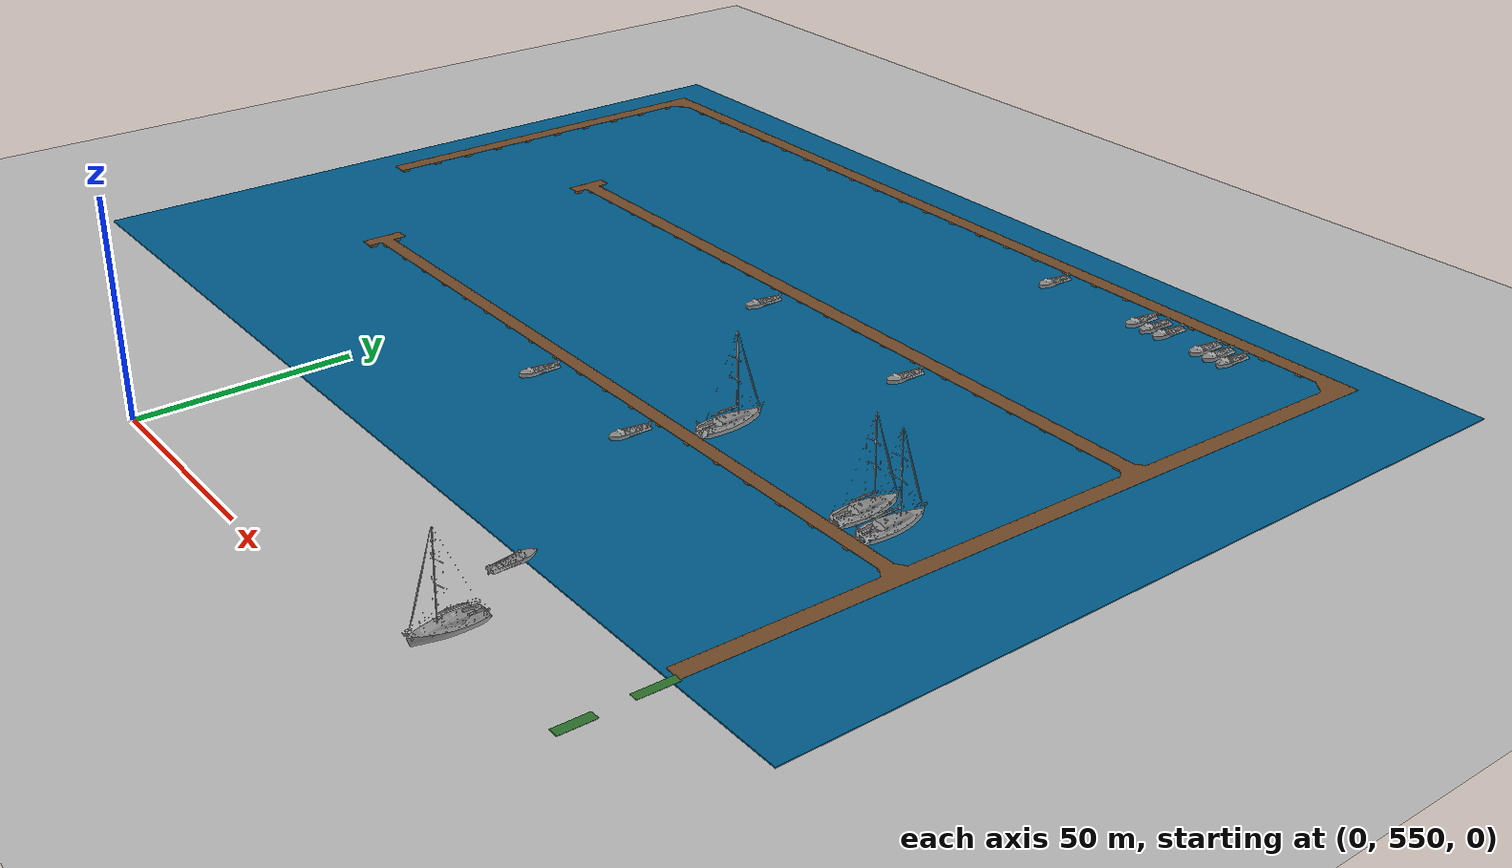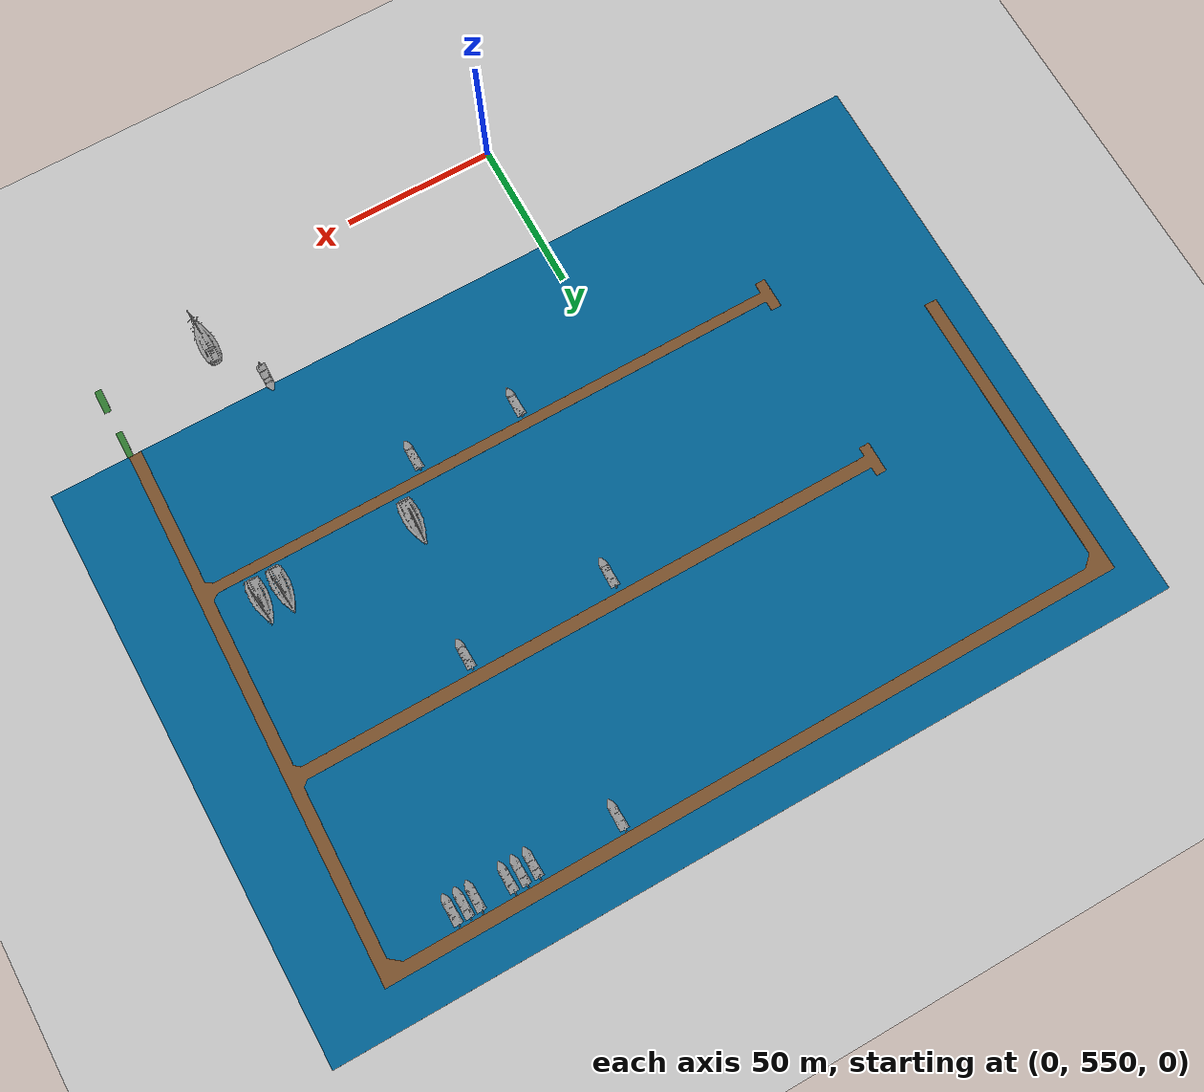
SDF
<sdf version="1.7">
 <world name="default">
  <model name="ground_plane">
   <static>1</static>
   <link name="link">
    <collision name="collision">
     <geometry><plane><normal>0 0 1</normal><size>100 100</size></plane></geometry>
     <surface><friction><ode><mu>100</mu><mu2>50</mu2></ode></friction></surface>
    </collision>
    <visual name="visual">
     <cast_shadows>0</cast_shadows>
     <geometry><plane><normal>0 0 1</normal><size>100 100</size></plane></geometry>
     <material>
      <script><uri>file://media/materials/scripts/gazebo.material</uri><name>Gazebo/Grey</name></script>
     </material>
    </visual>
   </link>
  </model>
  <model name="Marina_Zona_C">
   <link name="link">
    <inertial>
     <mass>50000</mass>
     <inertia><ixx>0</ixx><ixy>0</ixy><ixz>0</ixz><iyy>0</iyy><iyz>0</iyz><izz>0</izz></inertia>
    </inertial>
    <visual name="visual">
     <geometry>
      <mesh>
       <uri>/home/albert/marinero_ws/src/marinero_simulations/models/Marina_Zona_C/meshes/Marina_Zona_C.stl</uri>
       <scale>1 1 1</scale>
      </mesh>
     </geometry>
     <material>
      <script><uri>file://media/materials/scripts/gazebo.material</uri><name>Gazebo/Brown</name></script>
      <ambient>0.278 0.129 0.02 1</ambient>
      <diffuse>0.278 0.129 0.02 1</diffuse>
      <specular>0.278 0.129 0.02 1</specular>
      <emissive>0 0 0 1</emissive>
      <shader type="pixel"><normal_map>__default__</normal_map></shader>
     </material>
    </visual>
    <collision name="collision">
     <geometry>
      <mesh>
       <uri>/home/albert/marinero_ws/src/marinero_simulations/models/Marina_Zona_C/meshes/Marina_Zona_C.stl</uri>
       <scale>1 1 1</scale>
      </mesh>
     </geometry>
     <surface>
      <friction>
       <ode><mu>0.9</mu><mu2>0.9</mu2><fdir1>0 0 0</fdir1><slip1>0.001</slip1><slip2>1e-05</slip2></ode>
       <torsional>
        <coefficient>1</coefficient>
        <patch_radius>0</patch_radius>
        <surface_radius>0</surface_radius>
        <use_patch_radius>1</use_patch_radius>
        <ode><slip>0</slip></ode>
       </torsional>
      </friction>
      <bounce><restitution_coefficient>0</restitution_coefficient><threshold>1000</threshold></bounce>
      <contact>
       <collide_without_contact>0</collide_without_contact>
       <collide_without_contact_bitmask>0</collide_without_contact_bitmask>
       <collide_bitmask>1</collide_bitmask>
       <ode>
        <soft_cfm>0</soft_cfm>
        <soft_erp>0.2</soft_erp>
        <kp>1e+11</kp>
        <kd>100</kd>
        <max_vel>10</max_vel>
        <min_depth>0.001</min_depth>
       </ode>
       <bullet>
        <split_impulse>1</split_impulse>
        <split_impulse_penetration_threshold>-0.01</split_impulse_penetration_threshold>
        <soft_cfm>0</soft_cfm>
        <soft_erp>0.2</soft_erp>
        <kp>1e+11</kp>
        <kd>100</kd>
       </bullet>
      </contact>
     </surface>
    </collision>
   </link>
   <static>1</static>
   <pose>140.34 587.6 0.08 0 -0 0</pose>
  </model>
  <model name="sailboat_1_1_clone_1">
   <static>1</static>
   <link name="link">
    <visual name="visual">
     <pose>0 0 1 0 0 -1.507</pose>
     <geometry>
      <mesh>
       <uri>/home/albert/marinero_ws/src/marinero_simulations/models/sailboat_1/meshes/Sailboat.stl</uri>
       <scale>1.8 1.8 1.8</scale>
      </mesh>
     </geometry>
     <material>
      <script><uri>file://media/materials/scripts/gazebo.material</uri><name>Gazebo/Grey</name></script>
     </material>
    </visual>
    <collision name="collision">
     <pose>0 0 1 0 0 -1.507</pose>
     <geometry>
      <mesh>
       <uri>/home/albert/marinero_ws/src/marinero_simulations/models/sailboat_1/meshes/Sailboat.stl</uri>
       <scale>1.8 1.8 1.8</scale>
      </mesh>
     </geometry>
    </collision>
   </link>
   <pose>77.9434 647.569 0 0 0 -0.077596</pose>
  </model>
  <model name="speedboat_clone_2">
   <static>1</static>
   <link name="link">
    <visual name="visual">
     <pose>0 0 0.2 0 -0 1.57</pose>
     <geometry>
      <mesh>
       <uri>/home/albert/marinero_ws/src/marinero_simulations/models/speedboat/meshes/Speedboat.stl</uri>
       <scale>2 2 2</scale>
      </mesh>
     </geometry>
     <material>
      <script><uri>file://media/materials/scripts/gazebo.material</uri><name>Gazebo/Grey</name></script>
     </material>
    </visual>
    <collision name="collision">
     <pose>0 0 0.2 0 -0 1.57</pose>
     <geometry>
      <mesh>
       <uri>/home/albert/marinero_ws/src/marinero_simulations/models/sailboat_1/meshes/Speedboat.stl</uri>
       <scale>2 2 2</scale>
      </mesh>
     </geometry>
    </collision>
   </link>
   <pose>96.2597 585.04 0 0 -0 0</pose>
  </model>
  <model name="speedboat_clone_3">
   <static>1</static>
   <link name="link">
    <visual name="visual">
     <pose>0 0 0.2 0 -0 1.57</pose>
     <geometry>
      <mesh>
       <uri>/home/albert/marinero_ws/src/marinero_simulations/models/speedboat/meshes/Speedboat.stl</uri>
       <scale>2 2 2</scale>
      </mesh>
     </geometry>
     <material>
      <script><uri>file://media/materials/scripts/gazebo.material</uri><name>Gazebo/Grey</name></script>
     </material>
    </visual>
    <collision name="collision">
     <pose>0 0 0.2 0 -0 1.57</pose>
     <geometry>
      <mesh>
       <uri>/home/albert/marinero_ws/src/marinero_simulations/models/sailboat_1/meshes/Speedboat.stl</uri>
       <scale>2 2 2</scale>
      </mesh>
     </geometry>
    </collision>
   </link>
   <pose>68.6056 628.792 0 0 0 -3.12882</pose>
  </model>
  <model name="speedboat_clone_3_clone">
   <static>1</static>
   <link name="link">
    <visual name="visual">
     <pose>0 0 0.2 0 -0 1.57</pose>
     <geometry>
      <mesh>
       <uri>/home/albert/marinero_ws/src/marinero_simulations/models/speedboat/meshes/Speedboat.stl</uri>
       <scale>2 2 2</scale>
      </mesh>
     </geometry>
     <material>
      <script><uri>file://media/materials/scripts/gazebo.material</uri><name>Gazebo/Grey</name></script>
     </material>
    </visual>
    <collision name="collision">
     <pose>0 0 0.2 0 -0 1.57</pose>
     <geometry>
      <mesh>
       <uri>/home/albert/marinero_ws/src/marinero_simulations/models/sailboat_1/meshes/Speedboat.stl</uri>
       <scale>2 2 2</scale>
      </mesh>
     </geometry>
    </collision>
   </link>
   <pose>33.1988 628.868 0 0 0 -3.12882</pose>
  </model>
  <model name="speedboat_clone_3_clone_0">
   <static>1</static>
   <link name="link">
    <visual name="visual">
     <pose>0 0 0.2 0 -0 1.57</pose>
     <geometry>
      <mesh>
       <uri>/home/albert/marinero_ws/src/marinero_simulations/models/speedboat/meshes/Speedboat.stl</uri>
       <scale>2 2 2</scale>
      </mesh>
     </geometry>
     <material>
      <script><uri>file://media/materials/scripts/gazebo.material</uri><name>Gazebo/Grey</name></script>
     </material>
    </visual>
    <collision name="collision">
     <pose>0 0 0.2 0 -0 1.57</pose>
     <geometry>
      <mesh>
       <uri>/home/albert/marinero_ws/src/marinero_simulations/models/sailboat_1/meshes/Speedboat.stl</uri>
       <scale>2 2 2</scale>
      </mesh>
     </geometry>
    </collision>
   </link>
   <pose>34.7119 690.235 0 0 0 -3.12882</pose>
  </model>
  <model name="speedboat_clone_3_clone_1">
   <static>1</static>
   <link name="link">
    <visual name="visual">
     <pose>0 0 0.2 0 -0 1.57</pose>
     <geometry>
      <mesh>
       <uri>/home/albert/marinero_ws/src/marinero_simulations/models/speedboat/meshes/Speedboat.stl</uri>
       <scale>2 2 2</scale>
      </mesh>
     </geometry>
     <material>
      <script><uri>file://media/materials/scripts/gazebo.material</uri><name>Gazebo/Grey</name></script>
     </material>
    </visual>
    <collision name="collision">
     <pose>0 0 0.2 0 -0 1.57</pose>
     <geometry>
      <mesh>
       <uri>/home/albert/marinero_ws/src/marinero_simulations/models/sailboat_1/meshes/Speedboat.stl</uri>
       <scale>2 2 2</scale>
      </mesh>
     </geometry>
    </collision>
   </link>
   <pose>83.8159 691.024 0 0 0 -3.12882</pose>
  </model>
  <model name="speedboat_clone_3_clone_2">
   <static>1</static>
   <link name="link">
    <visual name="visual">
     <pose>0 0 0.2 0 -0 1.57</pose>
     <geometry>
      <mesh>
       <uri>/home/albert/marinero_ws/src/marinero_simulations/models/speedboat/meshes/Speedboat.stl</uri>
       <scale>2 2 2</scale>
      </mesh>
     </geometry>
     <material>
      <script><uri>file://media/materials/scripts/gazebo.material</uri><name>Gazebo/Grey</name></script>
     </material>
    </visual>
    <collision name="collision">
     <pose>0 0 0.2 0 -0 1.57</pose>
     <geometry>
      <mesh>
       <uri>/home/albert/marinero_ws/src/marinero_simulations/models/sailboat_1/meshes/Speedboat.stl</uri>
       <scale>2 2 2</scale>
      </mesh>
     </geometry>
    </collision>
   </link>
   <pose>67.744 754.075 0 0 0 -3.12882</pose>
  </model>
  <model name="speedboat_clone_3_clone_3">
   <static>1</static>
   <link name="link">
    <visual name="visual">
     <pose>0 0 0.2 0 -0 1.57</pose>
     <geometry>
      <mesh>
       <uri>/home/albert/marinero_ws/src/marinero_simulations/models/speedboat/meshes/Speedboat.stl</uri>
       <scale>2 2 2</scale>
      </mesh>
     </geometry>
     <material>
      <script><uri>file://media/materials/scripts/gazebo.material</uri><name>Gazebo/Grey</name></script>
     </material>
    </visual>
    <collision name="collision">
     <pose>0 0 0.2 0 -0 1.57</pose>
     <geometry>
      <mesh>
       <uri>/home/albert/marinero_ws/src/marinero_simulations/models/sailboat_1/meshes/Speedboat.stl</uri>
       <scale>2 2 2</scale>
      </mesh>
     </geometry>
    </collision>
   </link>
   <pose>95.506 753.963 0 0 0 -3.12882</pose>
  </model>
  <model name="speedboat_clone_3_clone_4">
   <static>1</static>
   <link name="link">
    <visual name="visual">
     <pose>0 0 0.2 0 -0 1.57</pose>
     <geometry>
      <mesh>
       <uri>/home/albert/marinero_ws/src/marinero_simulations/models/speedboat/meshes/Speedboat.stl</uri>
       <scale>2 2 2</scale>
      </mesh>
     </geometry>
     <material>
      <script><uri>file://media/materials/scripts/gazebo.material</uri><name>Gazebo/Grey</name></script>
     </material>
    </visual>
    <collision name="collision">
     <pose>0 0 0.2 0 -0 1.57</pose>
     <geometry>
      <mesh>
       <uri>/home/albert/marinero_ws/src/marinero_simulations/models/sailboat_1/meshes/Speedboat.stl</uri>
       <scale>2 2 2</scale>
      </mesh>
     </geometry>
    </collision>
   </link>
   <pose>99.6253 754.109 0 0 0 -3.12882</pose>
  </model>
  <model name="speedboat_clone_3_clone_5">
   <static>1</static>
   <link name="link">
    <visual name="visual">
     <pose>0 0 0.2 0 -0 1.57</pose>
     <geometry>
      <mesh>
       <uri>/home/albert/marinero_ws/src/marinero_simulations/models/speedboat/meshes/Speedboat.stl</uri>
       <scale>2 2 2</scale>
      </mesh>
     </geometry>
     <material>
      <script><uri>file://media/materials/scripts/gazebo.material</uri><name>Gazebo/Grey</name></script>
     </material>
    </visual>
    <collision name="collision">
     <pose>0 0 0.2 0 -0 1.57</pose>
     <geometry>
      <mesh>
       <uri>/home/albert/marinero_ws/src/marinero_simulations/models/sailboat_1/meshes/Speedboat.stl</uri>
       <scale>2 2 2</scale>
      </mesh>
     </geometry>
    </collision>
   </link>
   <pose>103.64 754.106 0 0 0 -3.12882</pose>
  </model>
  <model name="speedboat_clone_3_clone_6">
   <static>1</static>
   <link name="link">
    <visual name="visual">
     <pose>0 0 0.2 0 -0 1.57</pose>
     <geometry>
      <mesh>
       <uri>/home/albert/marinero_ws/src/marinero_simulations/models/speedboat/meshes/Speedboat.stl</uri>
       <scale>2 2 2</scale>
      </mesh>
     </geometry>
     <material>
      <script><uri>file://media/materials/scripts/gazebo.material</uri><name>Gazebo/Grey</name></script>
     </material>
    </visual>
    <collision name="collision">
     <pose>0 0 0.2 0 -0 1.57</pose>
     <geometry>
      <mesh>
       <uri>/home/albert/marinero_ws/src/marinero_simulations/models/sailboat_1/meshes/Speedboat.stl</uri>
       <scale>2 2 2</scale>
      </mesh>
     </geometry>
    </collision>
   </link>
   <pose>114.212 754.124 0 0 0 -3.12882</pose>
  </model>
  <model name="speedboat_clone_3_clone_7">
   <static>1</static>
   <link name="link">
    <visual name="visual">
     <pose>0 0 0.2 0 -0 1.57</pose>
     <geometry>
      <mesh>
       <uri>/home/albert/marinero_ws/src/marinero_simulations/models/speedboat/meshes/Speedboat.stl</uri>
       <scale>2 2 2</scale>
      </mesh>
     </geometry>
     <material>
      <script><uri>file://media/materials/scripts/gazebo.material</uri><name>Gazebo/Grey</name></script>
     </material>
    </visual>
    <collision name="collision">
     <pose>0 0 0.2 0 -0 1.57</pose>
     <geometry>
      <mesh>
       <uri>/home/albert/marinero_ws/src/marinero_simulations/models/sailboat_1/meshes/Speedboat.stl</uri>
       <scale>2 2 2</scale>
      </mesh>
     </geometry>
    </collision>
   </link>
   <pose>117.959 754.183 0 0 0 -3.12882</pose>
  </model>
  <model name="speedboat_clone_3_clone_8">
   <static>1</static>
   <link name="link">
    <visual name="visual">
     <pose>0 0 0.2 0 -0 1.57</pose>
     <geometry>
      <mesh>
       <uri>/home/albert/marinero_ws/src/marinero_simulations/models/speedboat/meshes/Speedboat.stl</uri>
       <scale>2 2 2</scale>
      </mesh>
     </geometry>
     <material>
      <script><uri>file://media/materials/scripts/gazebo.material</uri><name>Gazebo/Grey</name></script>
     </material>
    </visual>
    <collision name="collision">
     <pose>0 0 0.2 0 -0 1.57</pose>
     <geometry>
      <mesh>
       <uri>/home/albert/marinero_ws/src/marinero_simulations/models/sailboat_1/meshes/Speedboat.stl</uri>
       <scale>2 2 2</scale>
      </mesh>
     </geometry>
    </collision>
   </link>
   <pose>121.721 754.24 0 0 0 -3.12882</pose>
  </model>
  <model name="sailboat_1_1_clone_1_clone">
   <static>1</static>
   <link name="link">
    <visual name="visual">
     <pose>0 0 1 0 0 -1.507</pose>
     <geometry>
      <mesh>
       <uri>/home/albert/marinero_ws/src/marinero_simulations/models/sailboat_1/meshes/Sailboat.stl</uri>
       <scale>1.8 1.8 1.8</scale>
      </mesh>
     </geometry>
     <material>
      <script><uri>file://media/materials/scripts/gazebo.material</uri><name>Gazebo/Grey</name></script>
     </material>
    </visual>
    <collision name="collision">
     <pose>0 0 1 0 0 -1.507</pose>
     <geometry>
      <mesh>
       <uri>/home/albert/marinero_ws/src/marinero_simulations/models/sailboat_1/meshes/Sailboat.stl</uri>
       <scale>1.8 1.8 1.8</scale>
      </mesh>
     </geometry>
    </collision>
   </link>
   <pose>128.904 647.228 0 0 0 -0.077596</pose>
  </model>
  <model name="sailboat_1_1_clone_1_clone_0">
   <static>1</static>
   <link name="link">
    <visual name="visual">
     <pose>0 0 1 0 0 -1.507</pose>
     <geometry>
      <mesh>
       <uri>/home/albert/marinero_ws/src/marinero_simulations/models/sailboat_1/meshes/Sailboat.stl</uri>
       <scale>1.8 1.8 1.8</scale>
      </mesh>
     </geometry>
     <material>
      <script><uri>file://media/materials/scripts/gazebo.material</uri><name>Gazebo/Grey</name></script>
     </material>
    </visual>
    <collision name="collision">
     <pose>0 0 1 0 0 -1.507</pose>
     <geometry>
      <mesh>
       <uri>/home/albert/marinero_ws/src/marinero_simulations/models/sailboat_1/meshes/Sailboat.stl</uri>
       <scale>1.8 1.8 1.8</scale>
      </mesh>
     </geometry>
    </collision>
   </link>
   <pose>121.633 647.09 0 0 0 -0.077596</pose>
  </model>
  <model name="sailboat_1_1_clone_0_clone_clone">
   <static>1</static>
   <link name="link">
    <visual name="visual">
     <pose>0 0 1 0 0 -1.507</pose>
     <geometry>
      <mesh>
       <uri>/home/albert/marinero_ws/src/marinero_simulations/models/sailboat_1/meshes/Sailboat.stl</uri>
       <scale>1.8 1.8 1.8</scale>
      </mesh>
     </geometry>
     <material>
      <script><uri>file://media/materials/scripts/gazebo.material</uri><name>Gazebo/Grey</name></script>
     </material>
    </visual>
    <collision name="collision">
     <pose>0 0 1 0 0 -1.507</pose>
     <geometry>
      <mesh>
       <uri>/home/albert/marinero_ws/src/marinero_simulations/models/sailboat_1/meshes/Sailboat.stl</uri>
       <scale>1.8 1.8 1.8</scale>
      </mesh>
     </geometry>
    </collision>
   </link>
   <pose>107.575 565.37 0 0 -0 3.08007</pose>
  </model>
  <model name="grass_plane_XS_0">
   <link name="link">
    <pose>0 0 1.255 0 0 -1.5905</pose>
    <inertial>
     <mass>1</mass>
     <inertia><ixx>1</ixx><ixy>0</ixy><ixz>0</ixz><iyy>1</iyy><iyz>0</iyz><izz>1</izz></inertia>
    </inertial>
    <visual name="visual">
     <cast_shadows>0</cast_shadows>
     <geometry><box><size>9 2 0.1</size></box></geometry>
     <material>
      <script>
       <uri>/home/albert/marinero_ws/src/marinero_simulations/models/grass_plane_XS/materials/scripts</uri>
       <uri>/home/albert/marinero_ws/src/marinero_simulations/models/grass_plane_XS/materials/textures/grass.jpg</uri>
       <name>grass_V1/texture</name>
      </script>
      <shader type="pixel"><normal_map>__default__</normal_map></shader>
      <ambient>0.2 0.5 0.2 1</ambient>
      <diffuse>0.2 0.5 0.2 1</diffuse>
      <specular>0.2 0.2 0.2 1</specular>
      <emissive>0 0 0 1</emissive>
     </material>
    </visual>
    <collision name="collision">
     <geometry><box><size>9 2 0.1</size></box></geometry>
     <surface>
      <friction>
       <ode><mu>1</mu><mu2>1</mu2><fdir1>0 0 0</fdir1><slip1>0.001</slip1><slip2>1e-05</slip2></ode>
       <torsional>
        <coefficient>1</coefficient>
        <patch_radius>0</patch_radius>
        <surface_radius>0</surface_radius>
        <use_patch_radius>1</use_patch_radius>
        <ode><slip>0</slip></ode>
       </torsional>
      </friction>
      <bounce><restitution_coefficient>0</restitution_coefficient><threshold>1e+06</threshold></bounce>
      <contact>
       <collide_without_contact>0</collide_without_contact>
       <collide_without_contact_bitmask>1</collide_without_contact_bitmask>
       <collide_bitmask>1</collide_bitmask>
       <ode>
        <soft_cfm>0</soft_cfm>
        <soft_erp>0.2</soft_erp>
        <kp>1e+13</kp>
        <kd>1</kd>
        <max_vel>0.01</max_vel>
        <min_depth>0</min_depth>
       </ode>
       <bullet>
        <split_impulse>1</split_impulse>
        <split_impulse_penetration_threshold>-0.01</split_impulse_penetration_threshold>
        <soft_cfm>0</soft_cfm>
        <soft_erp>0.2</soft_erp>
        <kp>1e+13</kp>
        <kd>1</kd>
       </bullet>
      </contact>
     </surface>
    </collision>
   </link>
   <static>1</static>
   <pose>143.796 583.12 0 0 -0 0</pose>
  </model>
  <model name="sea_plane_C">
   <link name="link">
    <inertial>
     <mass>5.27875e+06</mass>
     <inertia>
      <ixx>4.66688e+09</ixx>
      <ixy>0</ixy>
      <ixz>0</ixz>
      <iyy>1.84866e+10</iyy>
      <iyz>0</iyz>
      <izz>2.31535e+10</izz>
     </inertia>
    </inertial>
    <visual name="visual">
     <cast_shadows>0</cast_shadows>
     <geometry><box><size>280 190 0.25</size></box></geometry>
     <material>
      <script>
       <uri>model://sea_plane/materials/scripts</uri>
       <uri>model://sea_plane/materials/textures</uri>
       <name>vrc/sea</name>
      </script>
      <shader type="pixel"><normal_map>__default__</normal_map></shader>
      <ambient>0 0.4 0.6 0</ambient>
      <diffuse>0 0.4 0.6 1</diffuse>
      <specular>0.2 0.2 0.2 1</specular>
      <emissive>0 0 0 1</emissive>
     </material>
    </visual>
    <collision name="collision">
     <geometry><box><size>280 190 0.25</size></box></geometry>
     <surface>
      <friction>
       <ode><mu>1</mu><mu2>1</mu2><fdir1>0 0 0</fdir1><slip1>0</slip1><slip2>0</slip2></ode>
       <torsional>
        <coefficient>1</coefficient>
        <patch_radius>0</patch_radius>
        <surface_radius>0</surface_radius>
        <use_patch_radius>1</use_patch_radius>
        <ode><slip>0</slip></ode>
       </torsional>
      </friction>
      <bounce><restitution_coefficient>0</restitution_coefficient><threshold>1e+06</threshold></bounce>
      <contact>
       <collide_without_contact>0</collide_without_contact>
       <collide_without_contact_bitmask>1</collide_without_contact_bitmask>
       <collide_bitmask>1</collide_bitmask>
       <ode>
        <soft_cfm>0</soft_cfm>
        <soft_erp>0.2</soft_erp>
        <kp>1e+13</kp>
        <kd>1</kd>
        <max_vel>0.01</max_vel>
        <min_depth>0</min_depth>
       </ode>
       <bullet>
        <split_impulse>1</split_impulse>
        <split_impulse_penetration_threshold>-0.01</split_impulse_penetration_threshold>
        <soft_cfm>0</soft_cfm>
        <soft_erp>0.2</soft_erp>
        <kp>1e+13</kp>
        <kd>1</kd>
       </bullet>
      </contact>
     </surface>
    </collision>
   </link>
   <static>1</static>
   <pose>30.4891 681.988 0 0 -0 0</pose>
  </model>
  <model name="grass_plane_SM_0_clone_0_clone">
   <link name="link">
    <pose>0 0 1.255 0 0 -1.5905</pose>
    <inertial>
     <mass>1</mass>
     <inertia><ixx>1</ixx><ixy>0</ixy><ixz>0</ixz><iyy>1</iyy><iyz>0</iyz><izz>1</izz></inertia>
    </inertial>
    <visual name="visual">
     <cast_shadows>0</cast_shadows>
     <geometry><box><size>8 2.25 0.1</size></box></geometry>
     <material>
      <script>
       <uri>/home/albert/marinero_ws/src/marinero_simulations/models/grass_plane_SM/materials/scripts</uri>
       <uri>/home/albert/marinero_ws/src/marinero_simulations/models/grass_plane_SM/materials/textures/grass.jpg</uri>
       <name>grass_SM/texture</name>
      </script>
      <shader type="pixel"><normal_map>__default__</normal_map></shader>
      <ambient>0.2 0.5 0.2 1</ambient>
      <diffuse>0.2 0.5 0.2 1</diffuse>
      <specular>0.2 0.2 0.2 1</specular>
      <emissive>0 0 0 1</emissive>
     </material>
    </visual>
    <collision name="collision">
     <geometry><box><size>8 2.25 0.1</size></box></geometry>
     <surface>
      <friction>
       <ode><mu>1</mu><mu2>1</mu2><fdir1>0 0 0</fdir1><slip1>0.001</slip1><slip2>1e-05</slip2></ode>
       <torsional>
        <coefficient>1</coefficient>
        <patch_radius>0</patch_radius>
        <surface_radius>0</surface_radius>
        <use_patch_radius>1</use_patch_radius>
        <ode><slip>0</slip></ode>
       </torsional>
      </friction>
      <bounce><restitution_coefficient>0</restitution_coefficient><threshold>1e+06</threshold></bounce>
      <contact>
       <collide_without_contact>0</collide_without_contact>
       <collide_without_contact_bitmask>1</collide_without_contact_bitmask>
       <collide_bitmask>1</collide_bitmask>
       <ode>
        <soft_cfm>0</soft_cfm>
        <soft_erp>0.2</soft_erp>
        <kp>1e+13</kp>
        <kd>1</kd>
        <max_vel>0.01</max_vel>
        <min_depth>0</min_depth>
       </ode>
       <bullet>
        <split_impulse>1</split_impulse>
        <split_impulse_penetration_threshold>-0.01</split_impulse_penetration_threshold>
        <soft_cfm>0</soft_cfm>
        <soft_erp>0.2</soft_erp>
        <kp>1e+13</kp>
        <kd>1</kd>
       </bullet>
      </contact>
     </surface>
    </collision>
   </link>
   <static>1</static>
   <pose>143.811 567.149 0 0 -0 0</pose>
  </model>
 </world>
</sdf>
